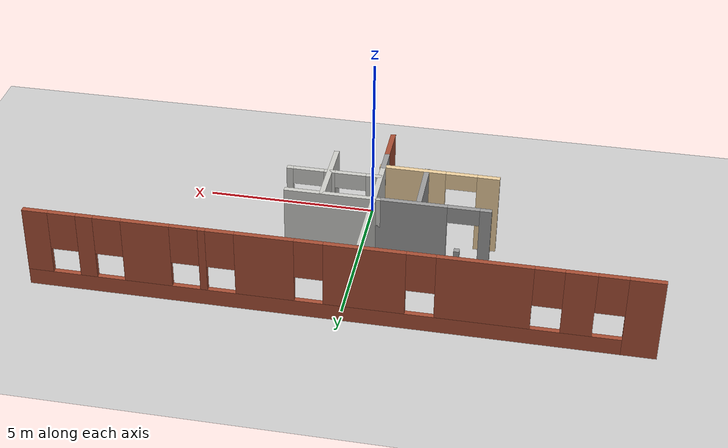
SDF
<sdf version="1.6">
 <world name="default">
  <model name="ground_plane">
   <static>1</static>
   <link name="link">
    <collision name="collision">
     <geometry><plane><normal>0 0 1</normal><size>100 100</size></plane></geometry>
     <surface><friction><ode><mu>100</mu><mu2>50</mu2></ode></friction></surface>
    </collision>
    <visual name="visual">
     <cast_shadows>0</cast_shadows>
     <geometry><plane><normal>0 0 1</normal><size>100 100</size></plane></geometry>
     <material>
      <script><uri>file://media/materials/scripts/gazebo.material</uri><name>Gazebo/Grey</name></script>
     </material>
    </visual>
   </link>
  </model>
  <model name="Building">
   <pose>-0.293126 -0.203944 0 0 -0 0</pose>
   <link name="Wall_0">
    <pose>0.434915 5.53865 0 0 -0 0</pose>
    <visual name="Wall_0_Visual_0">
     <pose>-8.26944 0 1.25 0 -0 0</pose>
     <geometry><box><size>0.961111 0.15 2.5</size></box></geometry>
     <material>
      <script><uri>file://media/materials/scripts/gazebo.material</uri><name>Gazebo/Bricks</name></script>
      <ambient>1 1 1 1</ambient>
     </material>
     <meta><layer>0</layer></meta>
    </visual>
    <collision name="Wall_0_Collision_0">
     <geometry><box><size>0.961111 0.15 2.5</size></box></geometry>
     <pose>-8.26944 0 1.25 0 -0 0</pose>
    </collision>
    <visual name="Wall_0_Visual_1">
     <pose>0.480555 0 0.25 0 -0 0</pose>
     <geometry><box><size>16.5389 0.15 0.5</size></box></geometry>
     <material>
      <script><uri>file://media/materials/scripts/gazebo.material</uri><name>Gazebo/Bricks</name></script>
      <ambient>1 1 1 1</ambient>
     </material>
     <meta><layer>0</layer></meta>
    </visual>
    <collision name="Wall_0_Collision_1">
     <geometry><box><size>16.5389 0.15 0.5</size></box></geometry>
     <pose>0.480555 0 0.25 0 -0 0</pose>
    </collision>
    <visual name="Wall_0_Visual_2">
     <pose>-6.56423 0 1.5 0 -0 0</pose>
     <geometry><box><size>0.849313 0.15 2</size></box></geometry>
     <material>
      <script><uri>file://media/materials/scripts/gazebo.material</uri><name>Gazebo/Bricks</name></script>
      <ambient>1 1 1 1</ambient>
     </material>
     <meta><layer>0</layer></meta>
    </visual>
    <collision name="Wall_0_Collision_2">
     <geometry><box><size>0.849313 0.15 2</size></box></geometry>
     <pose>-6.56423 0 1.5 0 -0 0</pose>
    </collision>
    <visual name="Wall_0_Visual_3">
     <pose>-4.04638 0 1.5 0 -0 0</pose>
     <geometry><box><size>2.5864 0.15 2</size></box></geometry>
     <material>
      <script><uri>file://media/materials/scripts/gazebo.material</uri><name>Gazebo/Bricks</name></script>
      <ambient>1 1 1 1</ambient>
     </material>
     <meta><layer>0</layer></meta>
    </visual>
    <collision name="Wall_0_Collision_3">
     <geometry><box><size>2.5864 0.15 2</size></box></geometry>
     <pose>-4.04638 0 1.5 0 -0 0</pose>
    </collision>
    <visual name="Wall_0_Visual_4">
     <pose>-0.828204 0 1.5 0 -0 0</pose>
     <geometry><box><size>2.24994 0.15 2</size></box></geometry>
     <material>
      <script><uri>file://media/materials/scripts/gazebo.material</uri><name>Gazebo/Bricks</name></script>
      <ambient>1 1 1 1</ambient>
     </material>
     <meta><layer>0</layer></meta>
    </visual>
    <collision name="Wall_0_Collision_4">
     <geometry><box><size>2.24994 0.15 2</size></box></geometry>
     <pose>-0.828204 0 1.5 0 -0 0</pose>
    </collision>
    <visual name="Wall_0_Visual_5">
     <pose>1.92369 0 1.5 0 -0 0</pose>
     <geometry><box><size>1.65386 0.15 2</size></box></geometry>
     <material>
      <script><uri>file://media/materials/scripts/gazebo.material</uri><name>Gazebo/Bricks</name></script>
      <ambient>1 1 1 1</ambient>
     </material>
     <meta><layer>0</layer></meta>
    </visual>
    <collision name="Wall_0_Collision_5">
     <geometry><box><size>1.65386 0.15 2</size></box></geometry>
     <pose>1.92369 0 1.5 0 -0 0</pose>
    </collision>
    <visual name="Wall_0_Visual_6">
     <pose>3.65346 0 1.5 0 -0 0</pose>
     <geometry><box><size>0.205679 0.15 2</size></box></geometry>
     <material>
      <script><uri>file://media/materials/scripts/gazebo.material</uri><name>Gazebo/Bricks</name></script>
      <ambient>1 1 1 1</ambient>
     </material>
     <meta><layer>0</layer></meta>
    </visual>
    <collision name="Wall_0_Collision_6">
     <geometry><box><size>0.205679 0.15 2</size></box></geometry>
     <pose>3.65346 0 1.5 0 -0 0</pose>
    </collision>
    <visual name="Wall_0_Visual_7">
     <pose>5.24243 0 1.5 0 -0 0</pose>
     <geometry><box><size>1.37227 0.15 2</size></box></geometry>
     <material>
      <script><uri>file://media/materials/scripts/gazebo.material</uri><name>Gazebo/Bricks</name></script>
      <ambient>1 1 1 1</ambient>
     </material>
     <meta><layer>0</layer></meta>
    </visual>
    <collision name="Wall_0_Collision_7">
     <geometry><box><size>1.37227 0.15 2</size></box></geometry>
     <pose>5.24243 0 1.5 0 -0 0</pose>
    </collision>
    <visual name="Wall_0_Visual_8">
     <pose>6.9722 0 1.5 0 -0 0</pose>
     <geometry><box><size>0.487269 0.15 2</size></box></geometry>
     <material>
      <script><uri>file://media/materials/scripts/gazebo.material</uri><name>Gazebo/Bricks</name></script>
      <ambient>1 1 1 1</ambient>
     </material>
     <meta><layer>0</layer></meta>
    </visual>
    <collision name="Wall_0_Collision_8">
     <geometry><box><size>0.487269 0.15 2</size></box></geometry>
     <pose>6.9722 0 1.5 0 -0 0</pose>
    </collision>
    <visual name="Wall_0_Visual_9">
     <pose>8.38292 0 1.5 0 -0 0</pose>
     <geometry><box><size>0.734164 0.15 2</size></box></geometry>
     <material>
      <script><uri>file://media/materials/scripts/gazebo.material</uri><name>Gazebo/Bricks</name></script>
      <ambient>1 1 1 1</ambient>
     </material>
     <meta><layer>0</layer></meta>
    </visual>
    <collision name="Wall_0_Collision_9">
     <geometry><box><size>0.734164 0.15 2</size></box></geometry>
     <pose>8.38292 0 1.5 0 -0 0</pose>
    </collision>
    <visual name="Wall_0_Visual_10">
     <pose>-7.38889 0 1.9 0 -0 0</pose>
     <geometry><box><size>0.8 0.15 1.2</size></box></geometry>
     <material>
      <script><uri>file://media/materials/scripts/gazebo.material</uri><name>Gazebo/Bricks</name></script>
      <ambient>1 1 1 1</ambient>
     </material>
     <meta><layer>0</layer></meta>
    </visual>
    <collision name="Wall_0_Collision_10">
     <geometry><box><size>0.8 0.15 1.2</size></box></geometry>
     <pose>-7.38889 0 1.9 0 -0 0</pose>
    </collision>
    <visual name="Wall_0_Visual_11">
     <pose>-5.73958 0 1.9 0 -0 0</pose>
     <geometry><box><size>0.8 0.15 1.2</size></box></geometry>
     <material>
      <script><uri>file://media/materials/scripts/gazebo.material</uri><name>Gazebo/Bricks</name></script>
      <ambient>1 1 1 1</ambient>
     </material>
     <meta><layer>0</layer></meta>
    </visual>
    <collision name="Wall_0_Collision_11">
     <geometry><box><size>0.8 0.15 1.2</size></box></geometry>
     <pose>-5.73958 0 1.9 0 -0 0</pose>
    </collision>
    <visual name="Wall_0_Visual_12">
     <pose>-2.35317 0 1.9 0 -0 0</pose>
     <geometry><box><size>0.8 0.15 1.2</size></box></geometry>
     <material>
      <script><uri>file://media/materials/scripts/gazebo.material</uri><name>Gazebo/Bricks</name></script>
      <ambient>1 1 1 1</ambient>
     </material>
     <meta><layer>0</layer></meta>
    </visual>
    <collision name="Wall_0_Collision_12">
     <geometry><box><size>0.8 0.15 1.2</size></box></geometry>
     <pose>-2.35317 0 1.9 0 -0 0</pose>
    </collision>
    <visual name="Wall_0_Visual_13">
     <pose>0.696767 0 1.9 0 -0 0</pose>
     <geometry><box><size>0.8 0.15 1.2</size></box></geometry>
     <material>
      <script><uri>file://media/materials/scripts/gazebo.material</uri><name>Gazebo/Bricks</name></script>
      <ambient>1 1 1 1</ambient>
     </material>
     <meta><layer>0</layer></meta>
    </visual>
    <collision name="Wall_0_Collision_13">
     <geometry><box><size>0.8 0.15 1.2</size></box></geometry>
     <pose>0.696767 0 1.9 0 -0 0</pose>
    </collision>
    <visual name="Wall_0_Visual_14">
     <pose>3.15062 0 1.9 0 -0 0</pose>
     <geometry><box><size>0.8 0.15 1.2</size></box></geometry>
     <material>
      <script><uri>file://media/materials/scripts/gazebo.material</uri><name>Gazebo/Bricks</name></script>
      <ambient>1 1 1 1</ambient>
     </material>
     <meta><layer>0</layer></meta>
    </visual>
    <collision name="Wall_0_Collision_14">
     <geometry><box><size>0.8 0.15 1.2</size></box></geometry>
     <pose>3.15062 0 1.9 0 -0 0</pose>
    </collision>
    <visual name="Wall_0_Visual_15">
     <pose>4.1563 0 1.9 0 -0 0</pose>
     <geometry><box><size>0.8 0.15 1.2</size></box></geometry>
     <material>
      <script><uri>file://media/materials/scripts/gazebo.material</uri><name>Gazebo/Bricks</name></script>
      <ambient>1 1 1 1</ambient>
     </material>
     <meta><layer>0</layer></meta>
    </visual>
    <collision name="Wall_0_Collision_15">
     <geometry><box><size>0.8 0.15 1.2</size></box></geometry>
     <pose>4.1563 0 1.9 0 -0 0</pose>
    </collision>
    <visual name="Wall_0_Visual_16">
     <pose>6.32857 0 1.9 0 -0 0</pose>
     <geometry><box><size>0.8 0.15 1.2</size></box></geometry>
     <material>
      <script><uri>file://media/materials/scripts/gazebo.material</uri><name>Gazebo/Bricks</name></script>
      <ambient>1 1 1 1</ambient>
     </material>
     <meta><layer>0</layer></meta>
    </visual>
    <collision name="Wall_0_Collision_16">
     <geometry><box><size>0.8 0.15 1.2</size></box></geometry>
     <pose>6.32857 0 1.9 0 -0 0</pose>
    </collision>
    <visual name="Wall_0_Visual_17">
     <pose>7.61584 0 1.9 0 -0 0</pose>
     <geometry><box><size>0.8 0.15 1.2</size></box></geometry>
     <material>
      <script><uri>file://media/materials/scripts/gazebo.material</uri><name>Gazebo/Bricks</name></script>
      <ambient>1 1 1 1</ambient>
     </material>
     <meta><layer>0</layer></meta>
    </visual>
    <collision name="Wall_0_Collision_17">
     <geometry><box><size>0.8 0.15 1.2</size></box></geometry>
     <pose>7.61584 0 1.9 0 -0 0</pose>
    </collision>
   </link>
   <link name="Wall_27">
    <collision name="Wall_27_Collision">
     <geometry><box><size>0.15 0.15 2.5</size></box></geometry>
     <pose>0 0 1.25 0 -0 0</pose>
    </collision>
    <visual name="Wall_27_Visual">
     <pose>0 0 1.25 0 -0 0</pose>
     <geometry><box><size>0.15 0.15 2.5</size></box></geometry>
     <material>
      <script><uri>file://media/materials/scripts/gazebo.material</uri><name>Gazebo/Grey</name></script>
      <ambient>1 1 1 1</ambient>
     </material>
     <meta><layer>0</layer></meta>
    </visual>
    <pose>-2.80058 5.17081 0 0 -0 0</pose>
   </link>
   <link name="Wall_35">
    <pose>-1.85267 1.50582 0 0 0 -0.0048</pose>
    <visual name="Wall_35_Visual_0">
     <pose>-1.40365 0 1.25 0 -0 0</pose>
     <geometry><box><size>0.648961 0.15 2.5</size></box></geometry>
     <material>
      <script><uri>file://media/materials/scripts/gazebo.material</uri><name>Gazebo/Grey</name></script>
      <ambient>0.921569 0.807843 0.615686 1</ambient>
     </material>
     <meta><layer>0</layer></meta>
    </visual>
    <collision name="Wall_35_Collision_0">
     <geometry><box><size>0.648961 0.15 2.5</size></box></geometry>
     <pose>-1.40365 0 1.25 0 -0 0</pose>
    </collision>
    <visual name="Wall_35_Visual_1">
     <pose>0.77448 0 1.25 0 -0 0</pose>
     <geometry><box><size>1.90729 0.15 2.5</size></box></geometry>
     <material>
      <script><uri>file://media/materials/scripts/gazebo.material</uri><name>Gazebo/Grey</name></script>
      <ambient>0.921569 0.807843 0.615686 1</ambient>
     </material>
     <meta><layer>0</layer></meta>
    </visual>
    <collision name="Wall_35_Collision_1">
     <geometry><box><size>1.90729 0.15 2.5</size></box></geometry>
     <pose>0.77448 0 1.25 0 -0 0</pose>
    </collision>
    <visual name="Wall_35_Visual_2">
     <pose>-0.629166 0 2.25 0 -0 0</pose>
     <geometry><box><size>0.9 0.15 0.5</size></box></geometry>
     <material>
      <script><uri>file://media/materials/scripts/gazebo.material</uri><name>Gazebo/Grey</name></script>
      <ambient>0.921569 0.807843 0.615686 1</ambient>
     </material>
     <meta><layer>0</layer></meta>
    </visual>
    <collision name="Wall_35_Collision_2">
     <geometry><box><size>0.9 0.15 0.5</size></box></geometry>
     <pose>-0.629166 0 2.25 0 -0 0</pose>
    </collision>
   </link>
   <link name="Wall_39">
    <collision name="Wall_39_Collision">
     <geometry><box><size>4 0.15 2.5</size></box></geometry>
     <pose>0 0 1.25 0 -0 0</pose>
    </collision>
    <visual name="Wall_39_Visual">
     <pose>0 0 1.25 0 -0 0</pose>
     <geometry><box><size>4 0.15 2.5</size></box></geometry>
     <material>
      <script><uri>file://media/materials/scripts/gazebo.material</uri><name>Gazebo/CeilingTiled</name></script>
      <ambient>1 1 1 1</ambient>
     </material>
     <meta><layer>0</layer></meta>
    </visual>
    <pose>-0.226014 3.44933 0 0 -0 1.5708</pose>
   </link>
   <link name="Wall_43">
    <pose>-1.90246 3.17229 0 0 -0 0</pose>
    <visual name="Wall_43_Visual_0">
     <pose>-1.45957 0 1.25 0 -0 0</pose>
     <geometry><box><size>0.330852 0.15 2.5</size></box></geometry>
     <material>
      <script><uri>file://media/materials/scripts/gazebo.material</uri><name>Gazebo/Grey</name></script>
      <ambient>1 1 1 1</ambient>
     </material>
     <meta><layer>0</layer></meta>
    </visual>
    <collision name="Wall_43_Collision_0">
     <geometry><box><size>0.330852 0.15 2.5</size></box></geometry>
     <pose>-1.45957 0 1.25 0 -0 0</pose>
    </collision>
    <visual name="Wall_43_Visual_1">
     <pose>0.615426 0 1.25 0 -0 0</pose>
     <geometry><box><size>2.01915 0.15 2.5</size></box></geometry>
     <material>
      <script><uri>file://media/materials/scripts/gazebo.material</uri><name>Gazebo/Grey</name></script>
      <ambient>1 1 1 1</ambient>
     </material>
     <meta><layer>0</layer></meta>
    </visual>
    <collision name="Wall_43_Collision_1">
     <geometry><box><size>2.01915 0.15 2.5</size></box></geometry>
     <pose>0.615426 0 1.25 0 -0 0</pose>
    </collision>
    <visual name="Wall_43_Visual_2">
     <pose>-0.844148 0 2.25 0 -0 0</pose>
     <geometry><box><size>0.9 0.15 0.5</size></box></geometry>
     <material>
      <script><uri>file://media/materials/scripts/gazebo.material</uri><name>Gazebo/Grey</name></script>
      <ambient>1 1 1 1</ambient>
     </material>
     <meta><layer>0</layer></meta>
    </visual>
    <collision name="Wall_43_Collision_2">
     <geometry><box><size>0.9 0.15 0.5</size></box></geometry>
     <pose>-0.844148 0 2.25 0 -0 0</pose>
    </collision>
   </link>
   <link name="Wall_45">
    <collision name="Wall_45_Collision">
     <geometry><box><size>1.75 0.15 2.5</size></box></geometry>
     <pose>0 0 1.25 0 -0 0</pose>
    </collision>
    <visual name="Wall_45_Visual">
     <pose>0 0 1.25 0 -0 0</pose>
     <geometry><box><size>1.75 0.15 2.5</size></box></geometry>
     <material>
      <script><uri>file://media/materials/scripts/gazebo.material</uri><name>Gazebo/Grey</name></script>
      <ambient>1 1 1 1</ambient>
     </material>
     <meta><layer>0</layer></meta>
    </visual>
    <pose>-1.48458 2.28897 0 0 0 -1.5708</pose>
   </link>
   <link name="Wall_47">
    <collision name="Wall_47_Collision">
     <geometry><box><size>0.75 0.15 2.5</size></box></geometry>
     <pose>0 0 1.25 0 -0 0</pose>
    </collision>
    <visual name="Wall_47_Visual">
     <pose>0 0 1.25 0 -0 0</pose>
     <geometry><box><size>0.75 0.15 2.5</size></box></geometry>
     <material>
      <script><uri>file://media/materials/scripts/gazebo.material</uri><name>Gazebo/Grey</name></script>
      <ambient>1 1 1 1</ambient>
     </material>
     <meta><layer>0</layer></meta>
    </visual>
    <pose>-0.226014 1.22433 0 0 0 -1.5708</pose>
   </link>
   <link name="Wall_54">
    <collision name="Wall_54_Collision">
     <geometry><box><size>2.75 0.15 2.5</size></box></geometry>
     <pose>0 0 1.25 0 -0 0</pose>
    </collision>
    <visual name="Wall_54_Visual">
     <pose>0 0 1.25 0 -0 0</pose>
     <geometry><box><size>2.75 0.15 2.5</size></box></geometry>
     <material>
      <script><uri>file://media/materials/scripts/gazebo.material</uri><name>Gazebo/CeilingTiled</name></script>
      <ambient>1 1 1 1</ambient>
     </material>
     <meta><layer>0</layer></meta>
    </visual>
    <pose>0.947545 3.17229 0 0 -0 0</pose>
   </link>
   <link name="Wall_56">
    <collision name="Wall_56_Collision">
     <geometry><box><size>2.25 0.15 2.5</size></box></geometry>
     <pose>0 0 1.25 0 -0 0</pose>
    </collision>
    <visual name="Wall_56_Visual">
     <pose>0 0 1.25 0 -0 0</pose>
     <geometry><box><size>2.25 0.15 2.5</size></box></geometry>
     <material>
      <script><uri>file://media/materials/scripts/gazebo.material</uri><name>Gazebo/CeilingTiled</name></script>
      <ambient>1 1 1 1</ambient>
     </material>
     <meta><layer>0</layer></meta>
    </visual>
    <pose>1.24327 2.09431 0 0 0 -1.5708</pose>
   </link>
   <link name="Wall_58">
    <pose>1.11364 2.04928 0 0 -0 0</pose>
    <visual name="Wall_58_Visual_0">
     <pose>-1.15186 0 1.25 0 -0 0</pose>
     <geometry><box><size>0.446272 0.15 2.5</size></box></geometry>
     <material>
      <script><uri>file://media/materials/scripts/gazebo.material</uri><name>Gazebo/CeilingTiled</name></script>
      <ambient>1 1 1 1</ambient>
     </material>
     <meta><layer>0</layer></meta>
    </visual>
    <collision name="Wall_58_Collision_0">
     <geometry><box><size>0.446272 0.15 2.5</size></box></geometry>
     <pose>-1.15186 0 1.25 0 -0 0</pose>
    </collision>
    <visual name="Wall_58_Visual_1">
     <pose>0.129622 0 1.25 0 -0 0</pose>
     <geometry><box><size>0.3167 0.15 2.5</size></box></geometry>
     <material>
      <script><uri>file://media/materials/scripts/gazebo.material</uri><name>Gazebo/CeilingTiled</name></script>
      <ambient>1 1 1 1</ambient>
     </material>
     <meta><layer>0</layer></meta>
    </visual>
    <collision name="Wall_58_Collision_1">
     <geometry><box><size>0.3167 0.15 2.5</size></box></geometry>
     <pose>0.129622 0 1.25 0 -0 0</pose>
    </collision>
    <visual name="Wall_58_Visual_2">
     <pose>1.28149 0 1.25 0 -0 0</pose>
     <geometry><box><size>0.187028 0.15 2.5</size></box></geometry>
     <material>
      <script><uri>file://media/materials/scripts/gazebo.material</uri><name>Gazebo/CeilingTiled</name></script>
      <ambient>1 1 1 1</ambient>
     </material>
     <meta><layer>0</layer></meta>
    </visual>
    <collision name="Wall_58_Collision_2">
     <geometry><box><size>0.187028 0.15 2.5</size></box></geometry>
     <pose>1.28149 0 1.25 0 -0 0</pose>
    </collision>
    <visual name="Wall_58_Visual_3">
     <pose>-0.478728 0 2.25 0 -0 0</pose>
     <geometry><box><size>0.9 0.15 0.5</size></box></geometry>
     <material>
      <script><uri>file://media/materials/scripts/gazebo.material</uri><name>Gazebo/CeilingTiled</name></script>
      <ambient>1 1 1 1</ambient>
     </material>
     <meta><layer>0</layer></meta>
    </visual>
    <collision name="Wall_58_Collision_3">
     <geometry><box><size>0.9 0.15 0.5</size></box></geometry>
     <pose>-0.478728 0 2.25 0 -0 0</pose>
    </collision>
    <visual name="Wall_58_Visual_4">
     <pose>0.737972 0 2.25 0 -0 0</pose>
     <geometry><box><size>0.9 0.15 0.5</size></box></geometry>
     <material>
      <script><uri>file://media/materials/scripts/gazebo.material</uri><name>Gazebo/CeilingTiled</name></script>
      <ambient>1 1 1 1</ambient>
     </material>
     <meta><layer>0</layer></meta>
    </visual>
    <collision name="Wall_58_Collision_4">
     <geometry><box><size>0.9 0.15 0.5</size></box></geometry>
     <pose>0.737972 0 2.25 0 -0 0</pose>
    </collision>
   </link>
   <link name="Wall_65">
    <collision name="Wall_65_Collision">
     <geometry><box><size>1.25 0.15 2.5</size></box></geometry>
     <pose>0 0 1.25 0 -0 0</pose>
    </collision>
    <visual name="Wall_65_Visual">
     <pose>0 0 1.25 0 -0 0</pose>
     <geometry><box><size>1.25 0.15 2.5</size></box></geometry>
     <material>
      <script><uri>file://media/materials/scripts/gazebo.material</uri><name>Gazebo/Bricks</name></script>
      <ambient>1 1 1 1</ambient>
     </material>
     <meta><layer>0</layer></meta>
    </visual>
    <pose>-0.226014 0.374331 0 0 0 -1.5708</pose>
   </link>
   <static>1</static>
  </model>
 </world>
</sdf>
